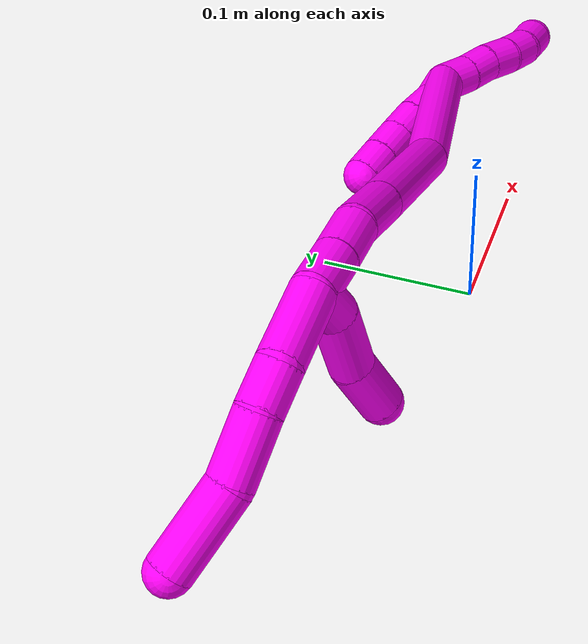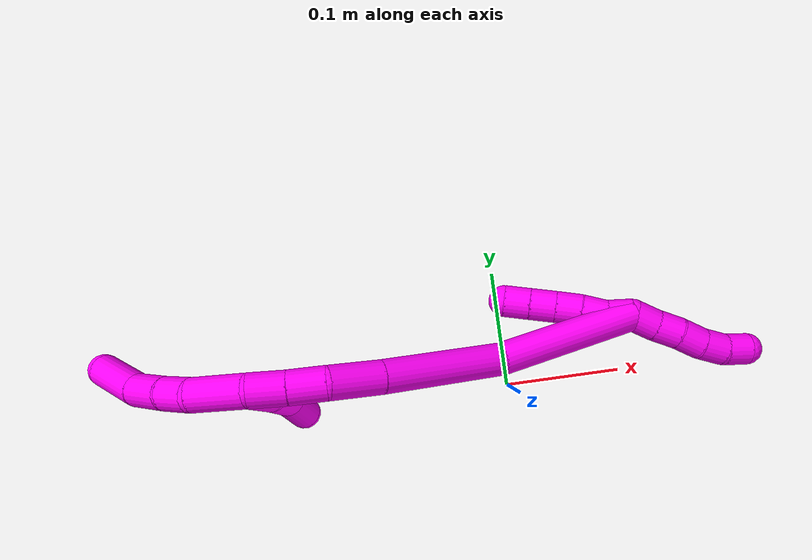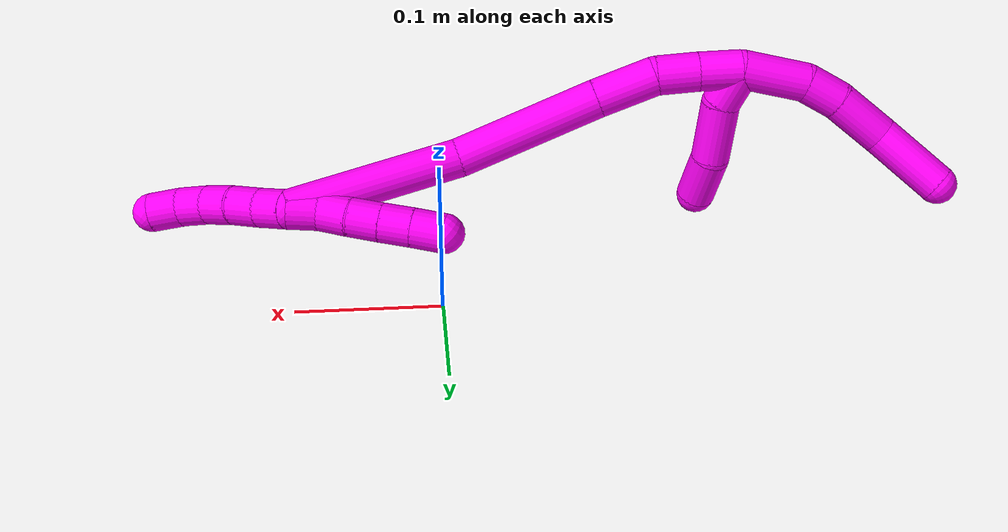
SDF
<sdf version="1.7">
 <world name="default">
  <model name="photoneo_s_sensor">
   <static>1</static>
   <pose>0 0 2 1.57079 1.57079 3.14159</pose>
   <link name="link">
    <inertial><mass>0.1</mass></inertial>
    <sensor name="sensor" type="depth">
     <update_rate>30</update_rate>
     <camera>
      <horizontal_fov>1.22</horizontal_fov>
      <image><width>1920</width><height>1200</height><format>B8G8R8</format></image>
      <clip><near>0.1</near><far>4</far></clip>
      <depth_camera><output>points</output></depth_camera>
     </camera>
     <plugin name="camera_plugin" filename="libgazebo_ros_depth_camera.so">
      <baseline>0.2</baseline>
      <alwaysOn>1</alwaysOn>
      <updateRate>0.0</updateRate>
      <cameraName>camera_ir</cameraName>
      <imageTopicName>/camera/color/image_raw</imageTopicName>
      <cameraInfoTopicName>/camera/color/camera_info</cameraInfoTopicName>
      <depthImageTopicName>/camera/depth/image_raw</depthImageTopicName>
      <depthImageCameraInfoTopicName>/camera/depth/camera_info</depthImageCameraInfoTopicName>
      <pointCloudTopicName>/camera/depth/points</pointCloudTopicName>
      <frameName>fr_optical</frameName>
      <pointCloudCutoff>0.1</pointCloudCutoff>
      <pointCloudCutoffMax>2.0</pointCloudCutoffMax>
      <distortionK1>0</distortionK1>
      <distortionK2>0</distortionK2>
      <distortionK3>0</distortionK3>
      <distortionT1>0</distortionT1>
      <distortionT2>0</distortionT2>
      <CxPrime>0</CxPrime>
      <Cx>0</Cx>
      <Cy>0</Cy>
      <focalLength>0</focalLength>
      <hackBaseline>0</hackBaseline>
     </plugin>
    </sensor>
   </link>
  </model>
  <model name="bin">
   <static>1</static>
   <link name="bottom">
    <collision name="collision-bottom">
     <pose>0 0 -0.01 0 -0 0</pose>
     <geometry><box><size>0.8 0.6 0.02</size></box></geometry>
     <surface>
      <friction><ode><mu>100</mu><mu2>100</mu2></ode></friction>
      <contact><collide_bitmask>65535</collide_bitmask></contact>
     </surface>
    </collision>
   </link>
   <link name="west_wall">
    <collision name="collision-west_wall">
     <pose>-0.41 0 0.1 0 -0 0</pose>
     <geometry><box><size>0.02 0.6 0.2</size></box></geometry>
     <surface>
      <friction><ode><mu>100</mu><mu2>100</mu2></ode></friction>
      <contact><collide_bitmask>65535</collide_bitmask></contact>
     </surface>
    </collision>
   </link>
   <link name="east_wall">
    <collision name="collision-east_wall">
     <pose>0.41 0 0.1 0 -0 0</pose>
     <geometry><box><size>0.02 0.6 0.2</size></box></geometry>
     <surface>
      <friction><ode><mu>100</mu><mu2>100</mu2></ode></friction>
      <contact><collide_bitmask>65535</collide_bitmask></contact>
     </surface>
    </collision>
   </link>
   <link name="south_wall">
    <collision name="collision-south_wall">
     <pose>0 -0.31 0.1 0 -0 0</pose>
     <geometry><box><size>0.8 0.02 0.2</size></box></geometry>
     <surface>
      <friction><ode><mu>100</mu><mu2>100</mu2></ode></friction>
      <contact><collide_bitmask>65535</collide_bitmask></contact>
     </surface>
    </collision>
   </link>
   <link name="north_wall">
    <collision name="collision-north_wall">
     <pose>0 0.31 0.1 0 -0 0</pose>
     <geometry><box><size>0.8 0.02 0.2</size></box></geometry>
     <surface>
      <friction><ode><mu>100</mu><mu2>100</mu2></ode></friction>
      <contact><collide_bitmask>65535</collide_bitmask></contact>
     </surface>
    </collision>
   </link>
  </model>
  <model name="10">
   <static>0</static>
   <link name="10">
    <collision name="collision-cylinder-e_1_2_8">
     <pose>-0.018199 -0.00307 0.010395 0.287185 -1.03366 -0.163987</pose>
     <geometry><cylinder><radius>0.0125</radius><length>0.042365</length></cylinder></geometry>
     <surface>
      <friction><ode><mu>1.16</mu><mu2>1.16</mu2><slip1>0</slip1><slip2>0</slip2></ode></friction>
      <contact><ode><kp>1e+06</kp><kd>1</kd><max_vel>0</max_vel><min_depth>0.001</min_depth></ode></contact>
     </surface>
    </collision>
    <visual name="visual-cylinder-e_1_2_8">
     <pose>-0.018199 -0.00307 0.010395 0.287185 -1.03366 -0.163987</pose>
     <geometry><cylinder><radius>0.0125</radius><length>0.042365</length></cylinder></geometry>
     <material><ambient>1 0 0.964706 1</ambient></material>
    </visual>
    <collision name="collision-cylinder-e_2_8_9">
     <pose>-0.047848 -0.008682 0.023397 0.772699 -1.26286 -0.578309</pose>
     <geometry><cylinder><radius>0.0125</radius><length>0.024027</length></cylinder></geometry>
     <surface>
      <friction><ode><mu>1.16</mu><mu2>1.16</mu2><slip1>0</slip1><slip2>0</slip2></ode></friction>
      <contact><ode><kp>1e+06</kp><kd>1</kd><max_vel>0</max_vel><min_depth>0.001</min_depth></ode></contact>
     </surface>
    </collision>
    <visual name="visual-cylinder-e_2_8_9">
     <pose>-0.047848 -0.008682 0.023397 0.772699 -1.26286 -0.578309</pose>
     <geometry><cylinder><radius>0.0125</radius><length>0.024027</length></cylinder></geometry>
     <material><ambient>1 0 0.964706 1</ambient></material>
    </visual>
    <collision name="collision-cylinder-e_3_9_10">
     <pose>-0.076445 -0.01617 0.027075 1.35761 -1.28383 -1.08527</pose>
     <geometry><cylinder><radius>0.0125</radius><length>0.035759</length></cylinder></geometry>
     <surface>
      <friction><ode><mu>1.16</mu><mu2>1.16</mu2><slip1>0</slip1><slip2>0</slip2></ode></friction>
      <contact><ode><kp>1e+06</kp><kd>1</kd><max_vel>0</max_vel><min_depth>0.001</min_depth></ode></contact>
     </surface>
    </collision>
    <visual name="visual-cylinder-e_3_9_10">
     <pose>-0.076445 -0.01617 0.027075 1.35761 -1.28383 -1.08527</pose>
     <geometry><cylinder><radius>0.0125</radius><length>0.035759</length></cylinder></geometry>
     <material><ambient>1 0 0.964706 1</ambient></material>
    </visual>
    <collision name="collision-cylinder-e_4_10_6">
     <pose>-0.117465 -0.022256 0.027056 2.33348 -1.50484 -2.28467</pose>
     <geometry><cylinder><radius>0.0125</radius><length>0.047849</length></cylinder></geometry>
     <surface>
      <friction><ode><mu>1.16</mu><mu2>1.16</mu2><slip1>0</slip1><slip2>0</slip2></ode></friction>
      <contact><ode><kp>1e+06</kp><kd>1</kd><max_vel>0</max_vel><min_depth>0.001</min_depth></ode></contact>
     </surface>
    </collision>
    <visual name="visual-cylinder-e_4_10_6">
     <pose>-0.117465 -0.022256 0.027056 2.33348 -1.50484 -2.28467</pose>
     <geometry><cylinder><radius>0.0125</radius><length>0.047849</length></cylinder></geometry>
     <material><ambient>1 0 0.964706 1</ambient></material>
    </visual>
    <collision name="collision-cylinder-e_1_2_11">
     <pose>-0.000985 -0.008321 -0.010007 2.44792 -0.075545 -0.20835</pose>
     <geometry><cylinder><radius>0.0125</radius><length>0.026103</length></cylinder></geometry>
     <surface>
      <friction><ode><mu>1.16</mu><mu2>1.16</mu2><slip1>0</slip1><slip2>0</slip2></ode></friction>
      <contact><ode><kp>1e+06</kp><kd>1</kd><max_vel>0</max_vel><min_depth>0.001</min_depth></ode></contact>
     </surface>
    </collision>
    <visual name="visual-cylinder-e_1_2_11">
     <pose>-0.000985 -0.008321 -0.010007 2.44792 -0.075545 -0.20835</pose>
     <geometry><cylinder><radius>0.0125</radius><length>0.026103</length></cylinder></geometry>
     <material><ambient>1 0 0.964706 1</ambient></material>
    </visual>
    <collision name="collision-cylinder-e_2_11_12">
     <pose>-0.009643 -0.030196 -0.03269 2.32274 -0.392046 -0.858303</pose>
     <geometry><cylinder><radius>0.0125</radius><length>0.040164</length></cylinder></geometry>
     <surface>
      <friction><ode><mu>1.16</mu><mu2>1.16</mu2><slip1>0</slip1><slip2>0</slip2></ode></friction>
      <contact><ode><kp>1e+06</kp><kd>1</kd><max_vel>0</max_vel><min_depth>0.001</min_depth></ode></contact>
     </surface>
    </collision>
    <visual name="visual-cylinder-e_2_11_12">
     <pose>-0.009643 -0.030196 -0.03269 2.32274 -0.392046 -0.858303</pose>
     <geometry><cylinder><radius>0.0125</radius><length>0.040164</length></cylinder></geometry>
     <material><ambient>1 0 0.964706 1</ambient></material>
    </visual>
    <collision name="collision-cylinder-e_3_12_5">
     <pose>-0.020421 -0.057506 -0.054619 2.16296 -0.185157 -0.345233</pose>
     <geometry><cylinder><radius>0.0125</radius><length>0.033734</length></cylinder></geometry>
     <surface>
      <friction><ode><mu>1.16</mu><mu2>1.16</mu2><slip1>0</slip1><slip2>0</slip2></ode></friction>
      <contact><ode><kp>1e+06</kp><kd>1</kd><max_vel>0</max_vel><min_depth>0.001</min_depth></ode></contact>
     </surface>
    </collision>
    <visual name="visual-cylinder-e_3_12_5">
     <pose>-0.020421 -0.057506 -0.054619 2.16296 -0.185157 -0.345233</pose>
     <geometry><cylinder><radius>0.0125</radius><length>0.033734</length></cylinder></geometry>
     <material><ambient>1 0 0.964706 1</ambient></material>
    </visual>
    <collision name="collision-cylinder-e_1_2_13">
     <pose>0.010036 -0.00019 -0.009107 3.12071 0.833769 3.09444</pose>
     <geometry><cylinder><radius>0.0125</radius><length>0.027106</length></cylinder></geometry>
     <surface>
      <friction><ode><mu>1.16</mu><mu2>1.16</mu2><slip1>0</slip1><slip2>0</slip2></ode></friction>
      <contact><ode><kp>1e+06</kp><kd>1</kd><max_vel>0</max_vel><min_depth>0.001</min_depth></ode></contact>
     </surface>
    </collision>
    <visual name="visual-cylinder-e_1_2_13">
     <pose>0.010036 -0.00019 -0.009107 3.12071 0.833769 3.09444</pose>
     <geometry><cylinder><radius>0.0125</radius><length>0.027106</length></cylinder></geometry>
     <material><ambient>1 0 0.964706 1</ambient></material>
    </visual>
    <collision name="collision-cylinder-e_2_13_14">
     <pose>0.029658 -0.000294 -0.027726 -3.13255 0.789273 -3.11988</pose>
     <geometry><cylinder><radius>0.0125</radius><length>0.027011</length></cylinder></geometry>
     <surface>
      <friction><ode><mu>1.16</mu><mu2>1.16</mu2><slip1>0</slip1><slip2>0</slip2></ode></friction>
      <contact><ode><kp>1e+06</kp><kd>1</kd><max_vel>0</max_vel><min_depth>0.001</min_depth></ode></contact>
     </surface>
    </collision>
    <visual name="visual-cylinder-e_2_13_14">
     <pose>0.029658 -0.000294 -0.027726 -3.13255 0.789273 -3.11988</pose>
     <geometry><cylinder><radius>0.0125</radius><length>0.027011</length></cylinder></geometry>
     <material><ambient>1 0 0.964706 1</ambient></material>
    </visual>
    <collision name="collision-cylinder-e_3_14_15">
     <pose>0.04933 -0.003448 -0.053704 2.94733 0.541135 2.46593</pose>
     <geometry><cylinder><radius>0.0125</radius><length>0.039158</length></cylinder></geometry>
     <surface>
      <friction><ode><mu>1.16</mu><mu2>1.16</mu2><slip1>0</slip1><slip2>0</slip2></ode></friction>
      <contact><ode><kp>1e+06</kp><kd>1</kd><max_vel>0</max_vel><min_depth>0.001</min_depth></ode></contact>
     </surface>
    </collision>
    <visual name="visual-cylinder-e_3_14_15">
     <pose>0.04933 -0.003448 -0.053704 2.94733 0.541135 2.46593</pose>
     <geometry><cylinder><radius>0.0125</radius><length>0.039158</length></cylinder></geometry>
     <material><ambient>1 0 0.964706 1</ambient></material>
    </visual>
    <collision name="collision-cylinder-e_4_15_16">
     <pose>0.082283 -0.013839 -0.111259 2.96927 0.501537 2.49116</pose>
     <geometry><cylinder><radius>0.0125</radius><length>0.09513</length></cylinder></geometry>
     <surface>
      <friction><ode><mu>1.16</mu><mu2>1.16</mu2><slip1>0</slip1><slip2>0</slip2></ode></friction>
      <contact><ode><kp>1e+06</kp><kd>1</kd><max_vel>0</max_vel><min_depth>0.001</min_depth></ode></contact>
     </surface>
    </collision>
    <visual name="visual-cylinder-e_4_15_16">
     <pose>0.082283 -0.013839 -0.111259 2.96927 0.501537 2.49116</pose>
     <geometry><cylinder><radius>0.0125</radius><length>0.09513</length></cylinder></geometry>
     <material><ambient>1 0 0.964706 1</ambient></material>
    </visual>
    <collision name="collision-cylinder-e_5_16_1">
     <pose>0.134887 -0.015586 -0.199252 -3.02687 0.562049 -2.74885</pose>
     <geometry><cylinder><radius>0.0125</radius><length>0.111596</length></cylinder></geometry>
     <surface>
      <friction><ode><mu>1.16</mu><mu2>1.16</mu2><slip1>0</slip1><slip2>0</slip2></ode></friction>
      <contact><ode><kp>1e+06</kp><kd>1</kd><max_vel>0</max_vel><min_depth>0.001</min_depth></ode></contact>
     </surface>
    </collision>
    <visual name="visual-cylinder-e_5_16_1">
     <pose>0.134887 -0.015586 -0.199252 -3.02687 0.562049 -2.74885</pose>
     <geometry><cylinder><radius>0.0125</radius><length>0.111596</length></cylinder></geometry>
     <material><ambient>1 0 0.964706 1</ambient></material>
    </visual>
    <collision name="collision-cylinder-e_1_1_17">
     <pose>0.172396 -0.014577 -0.250657 2.36799 0.890325 1.72828</pose>
     <geometry><cylinder><radius>0.0125</radius><length>0.02</length></cylinder></geometry>
     <surface>
      <friction><ode><mu>1.16</mu><mu2>1.16</mu2><slip1>0</slip1><slip2>0</slip2></ode></friction>
      <contact><ode><kp>1e+06</kp><kd>1</kd><max_vel>0</max_vel><min_depth>0.001</min_depth></ode></contact>
     </surface>
    </collision>
    <visual name="visual-cylinder-e_1_1_17">
     <pose>0.172396 -0.014577 -0.250657 2.36799 0.890325 1.72828</pose>
     <geometry><cylinder><radius>0.0125</radius><length>0.02</length></cylinder></geometry>
     <material><ambient>1 0 0.964706 1</ambient></material>
    </visual>
    <collision name="collision-cylinder-e_2_17_18">
     <pose>0.188331 -0.022411 -0.259801 2.50428 0.954954 2.00637</pose>
     <geometry><cylinder><radius>0.0125</radius><length>0.02</length></cylinder></geometry>
     <surface>
      <friction><ode><mu>1.16</mu><mu2>1.16</mu2><slip1>0</slip1><slip2>0</slip2></ode></friction>
      <contact><ode><kp>1e+06</kp><kd>1</kd><max_vel>0</max_vel><min_depth>0.001</min_depth></ode></contact>
     </surface>
    </collision>
    <visual name="visual-cylinder-e_2_17_18">
     <pose>0.188331 -0.022411 -0.259801 2.50428 0.954954 2.00637</pose>
     <geometry><cylinder><radius>0.0125</radius><length>0.02</length></cylinder></geometry>
     <material><ambient>1 0 0.964706 1</ambient></material>
    </visual>
    <collision name="collision-cylinder-e_3_18_19">
     <pose>0.204041 -0.030434 -0.269135 2.36748 0.855168 1.68207</pose>
     <geometry><cylinder><radius>0.0125</radius><length>0.02</length></cylinder></geometry>
     <surface>
      <friction><ode><mu>1.16</mu><mu2>1.16</mu2><slip1>0</slip1><slip2>0</slip2></ode></friction>
      <contact><ode><kp>1e+06</kp><kd>1</kd><max_vel>0</max_vel><min_depth>0.001</min_depth></ode></contact>
     </surface>
    </collision>
    <visual name="visual-cylinder-e_3_18_19">
     <pose>0.204041 -0.030434 -0.269135 2.36748 0.855168 1.68207</pose>
     <geometry><cylinder><radius>0.0125</radius><length>0.02</length></cylinder></geometry>
     <material><ambient>1 0 0.964706 1</ambient></material>
    </visual>
    <collision name="collision-cylinder-e_4_19_20">
     <pose>0.218889 -0.038466 -0.279727 2.61325 0.818486 2.02635</pose>
     <geometry><cylinder><radius>0.0125</radius><length>0.02</length></cylinder></geometry>
     <surface>
      <friction><ode><mu>1.16</mu><mu2>1.16</mu2><slip1>0</slip1><slip2>0</slip2></ode></friction>
      <contact><ode><kp>1e+06</kp><kd>1</kd><max_vel>0</max_vel><min_depth>0.001</min_depth></ode></contact>
     </surface>
    </collision>
    <visual name="visual-cylinder-e_4_19_20">
     <pose>0.218889 -0.038466 -0.279727 2.61325 0.818486 2.02635</pose>
     <geometry><cylinder><radius>0.0125</radius><length>0.02</length></cylinder></geometry>
     <material><ambient>1 0 0.964706 1</ambient></material>
    </visual>
    <collision name="collision-cylinder-e_5_20_4">
     <pose>0.232854 -0.043253 -0.292963 2.96056 0.729395 2.67478</pose>
     <geometry><cylinder><radius>0.0125</radius><length>0.02</length></cylinder></geometry>
     <surface>
      <friction><ode><mu>1.16</mu><mu2>1.16</mu2><slip1>0</slip1><slip2>0</slip2></ode></friction>
      <contact><ode><kp>1e+06</kp><kd>1</kd><max_vel>0</max_vel><min_depth>0.001</min_depth></ode></contact>
     </surface>
    </collision>
    <visual name="visual-cylinder-e_5_20_4">
     <pose>0.232854 -0.043253 -0.292963 2.96056 0.729395 2.67478</pose>
     <geometry><cylinder><radius>0.0125</radius><length>0.02</length></cylinder></geometry>
     <material><ambient>1 0 0.964706 1</ambient></material>
    </visual>
    <collision name="collision-cylinder-e_1_1_21">
     <pose>0.156602 -0.010375 -0.240187 0.032466 -0.930735 -0.016304</pose>
     <geometry><cylinder><radius>0.0125</radius><length>0.02</length></cylinder></geometry>
     <surface>
      <friction><ode><mu>1.16</mu><mu2>1.16</mu2><slip1>0</slip1><slip2>0</slip2></ode></friction>
      <contact><ode><kp>1e+06</kp><kd>1</kd><max_vel>0</max_vel><min_depth>0.001</min_depth></ode></contact>
     </surface>
    </collision>
    <visual name="visual-cylinder-e_1_1_21">
     <pose>0.156602 -0.010375 -0.240187 0.032466 -0.930735 -0.016304</pose>
     <geometry><cylinder><radius>0.0125</radius><length>0.02</length></cylinder></geometry>
     <material><ambient>1 0 0.964706 1</ambient></material>
    </visual>
    <collision name="collision-cylinder-e_2_21_22">
     <pose>0.139713 -0.008693 -0.229996 -0.418254 -1.09056 0.256082</pose>
     <geometry><cylinder><radius>0.0125</radius><length>0.02</length></cylinder></geometry>
     <surface>
      <friction><ode><mu>1.16</mu><mu2>1.16</mu2><slip1>0</slip1><slip2>0</slip2></ode></friction>
      <contact><ode><kp>1e+06</kp><kd>1</kd><max_vel>0</max_vel><min_depth>0.001</min_depth></ode></contact>
     </surface>
    </collision>
    <visual name="visual-cylinder-e_2_21_22">
     <pose>0.139713 -0.008693 -0.229996 -0.418254 -1.09056 0.256082</pose>
     <geometry><cylinder><radius>0.0125</radius><length>0.02</length></cylinder></geometry>
     <material><ambient>1 0 0.964706 1</ambient></material>
    </visual>
    <collision name="collision-cylinder-e_3_22_23">
     <pose>0.122029 -0.005857 -0.221151 -0.20458 -1.07899 0.122766</pose>
     <geometry><cylinder><radius>0.0125</radius><length>0.02</length></cylinder></geometry>
     <surface>
      <friction><ode><mu>1.16</mu><mu2>1.16</mu2><slip1>0</slip1><slip2>0</slip2></ode></friction>
      <contact><ode><kp>1e+06</kp><kd>1</kd><max_vel>0</max_vel><min_depth>0.001</min_depth></ode></contact>
     </surface>
    </collision>
    <visual name="visual-cylinder-e_3_22_23">
     <pose>0.122029 -0.005857 -0.221151 -0.20458 -1.07899 0.122766</pose>
     <geometry><cylinder><radius>0.0125</radius><length>0.02</length></cylinder></geometry>
     <material><ambient>1 0 0.964706 1</ambient></material>
    </visual>
    <collision name="collision-cylinder-e_4_23_24">
     <pose>0.104483 -0.004021 -0.211732 -0.180788 -1.0616 0.10631</pose>
     <geometry><cylinder><radius>0.0125</radius><length>0.02</length></cylinder></geometry>
     <surface>
      <friction><ode><mu>1.16</mu><mu2>1.16</mu2><slip1>0</slip1><slip2>0</slip2></ode></friction>
      <contact><ode><kp>1e+06</kp><kd>1</kd><max_vel>0</max_vel><min_depth>0.001</min_depth></ode></contact>
     </surface>
    </collision>
    <visual name="visual-cylinder-e_4_23_24">
     <pose>0.104483 -0.004021 -0.211732 -0.180788 -1.0616 0.10631</pose>
     <geometry><cylinder><radius>0.0125</radius><length>0.02</length></cylinder></geometry>
     <material><ambient>1 0 0.964706 1</ambient></material>
    </visual>
    <collision name="collision-cylinder-e_5_24_3">
     <pose>0.086913 -0.002352 -0.202327 -0.170344 -1.08409 0.102741</pose>
     <geometry><cylinder><radius>0.0125</radius><length>0.02</length></cylinder></geometry>
     <surface>
      <friction><ode><mu>1.16</mu><mu2>1.16</mu2><slip1>0</slip1><slip2>0</slip2></ode></friction>
      <contact><ode><kp>1e+06</kp><kd>1</kd><max_vel>0</max_vel><min_depth>0.001</min_depth></ode></contact>
     </surface>
    </collision>
    <visual name="visual-cylinder-e_5_24_3">
     <pose>0.086913 -0.002352 -0.202327 -0.170344 -1.08409 0.102741</pose>
     <geometry><cylinder><radius>0.0125</radius><length>0.02</length></cylinder></geometry>
     <material><ambient>1 0 0.964706 1</ambient></material>
    </visual>
    <collision name="collision-sphere-3">
     <pose>0.078074 -0.001559 -0.197717 0 -0 0</pose>
     <geometry><sphere><radius>0.0125</radius></sphere></geometry>
     <surface>
      <friction><ode><mu>1.16</mu><mu2>1.16</mu2><slip1>0</slip1><slip2>0</slip2></ode></friction>
      <contact><ode><kp>1e+06</kp><kd>1</kd><max_vel>0</max_vel><min_depth>0.001</min_depth></ode></contact>
     </surface>
    </collision>
    <visual name="visual-sphere-3">
     <pose>0.078074 -0.001559 -0.197717 0 -0 0</pose>
     <geometry><sphere><radius>0.0125</radius></sphere></geometry>
     <material><ambient>1 0 0.964706 1</ambient></material>
    </visual>
    <collision name="collision-sphere-24">
     <pose>0.095752 -0.003144 -0.206936 0 -0 0</pose>
     <geometry><sphere><radius>0.0125</radius></sphere></geometry>
     <surface>
      <friction><ode><mu>1.16</mu><mu2>1.16</mu2><slip1>0</slip1><slip2>0</slip2></ode></friction>
      <contact><ode><kp>1e+06</kp><kd>1</kd><max_vel>0</max_vel><min_depth>0.001</min_depth></ode></contact>
     </surface>
    </collision>
    <visual name="visual-sphere-24">
     <pose>0.095752 -0.003144 -0.206936 0 -0 0</pose>
     <geometry><sphere><radius>0.0125</radius></sphere></geometry>
     <material><ambient>1 0 0.964706 1</ambient></material>
    </visual>
    <collision name="collision-sphere-23">
     <pose>0.113214 -0.004897 -0.216527 0 -0 0</pose>
     <geometry><sphere><radius>0.0125</radius></sphere></geometry>
     <surface>
      <friction><ode><mu>1.16</mu><mu2>1.16</mu2><slip1>0</slip1><slip2>0</slip2></ode></friction>
      <contact><ode><kp>1e+06</kp><kd>1</kd><max_vel>0</max_vel><min_depth>0.001</min_depth></ode></contact>
     </surface>
    </collision>
    <visual name="visual-sphere-23">
     <pose>0.113214 -0.004897 -0.216527 0 -0 0</pose>
     <geometry><sphere><radius>0.0125</radius></sphere></geometry>
     <material><ambient>1 0 0.964706 1</ambient></material>
    </visual>
    <collision name="collision-sphere-22">
     <pose>0.130844 -0.006816 -0.225774 0 -0 0</pose>
     <geometry><sphere><radius>0.0125</radius></sphere></geometry>
     <surface>
      <friction><ode><mu>1.16</mu><mu2>1.16</mu2><slip1>0</slip1><slip2>0</slip2></ode></friction>
      <contact><ode><kp>1e+06</kp><kd>1</kd><max_vel>0</max_vel><min_depth>0.001</min_depth></ode></contact>
     </surface>
    </collision>
    <visual name="visual-sphere-22">
     <pose>0.130844 -0.006816 -0.225774 0 -0 0</pose>
     <geometry><sphere><radius>0.0125</radius></sphere></geometry>
     <material><ambient>1 0 0.964706 1</ambient></material>
    </visual>
    <collision name="collision-sphere-21">
     <pose>0.148582 -0.010569 -0.234218 0 -0 0</pose>
     <geometry><sphere><radius>0.0125</radius></sphere></geometry>
     <surface>
      <friction><ode><mu>1.16</mu><mu2>1.16</mu2><slip1>0</slip1><slip2>0</slip2></ode></friction>
      <contact><ode><kp>1e+06</kp><kd>1</kd><max_vel>0</max_vel><min_depth>0.001</min_depth></ode></contact>
     </surface>
    </collision>
    <visual name="visual-sphere-21">
     <pose>0.148582 -0.010569 -0.234218 0 -0 0</pose>
     <geometry><sphere><radius>0.0125</radius></sphere></geometry>
     <material><ambient>1 0 0.964706 1</ambient></material>
    </visual>
    <collision name="collision-sphere-4">
     <pose>0.239518 -0.044595 -0.300297 0 -0 0</pose>
     <geometry><sphere><radius>0.0125</radius></sphere></geometry>
     <surface>
      <friction><ode><mu>1.16</mu><mu2>1.16</mu2><slip1>0</slip1><slip2>0</slip2></ode></friction>
      <contact><ode><kp>1e+06</kp><kd>1</kd><max_vel>0</max_vel><min_depth>0.001</min_depth></ode></contact>
     </surface>
    </collision>
    <visual name="visual-sphere-4">
     <pose>0.239518 -0.044595 -0.300297 0 -0 0</pose>
     <geometry><sphere><radius>0.0125</radius></sphere></geometry>
     <material><ambient>1 0 0.964706 1</ambient></material>
    </visual>
    <collision name="collision-sphere-20">
     <pose>0.22619 -0.04191 -0.285629 0 -0 0</pose>
     <geometry><sphere><radius>0.0125</radius></sphere></geometry>
     <surface>
      <friction><ode><mu>1.16</mu><mu2>1.16</mu2><slip1>0</slip1><slip2>0</slip2></ode></friction>
      <contact><ode><kp>1e+06</kp><kd>1</kd><max_vel>0</max_vel><min_depth>0.001</min_depth></ode></contact>
     </surface>
    </collision>
    <visual name="visual-sphere-20">
     <pose>0.22619 -0.04191 -0.285629 0 -0 0</pose>
     <geometry><sphere><radius>0.0125</radius></sphere></geometry>
     <material><ambient>1 0 0.964706 1</ambient></material>
    </visual>
    <collision name="collision-sphere-11">
     <pose>-0.00197 -0.016642 -0.020013 0 -0 0</pose>
     <geometry><sphere><radius>0.0125</radius></sphere></geometry>
     <surface>
      <friction><ode><mu>1.16</mu><mu2>1.16</mu2><slip1>0</slip1><slip2>0</slip2></ode></friction>
      <contact><ode><kp>1e+06</kp><kd>1</kd><max_vel>0</max_vel><min_depth>0.001</min_depth></ode></contact>
     </surface>
    </collision>
    <visual name="visual-sphere-11">
     <pose>-0.00197 -0.016642 -0.020013 0 -0 0</pose>
     <geometry><sphere><radius>0.0125</radius></sphere></geometry>
     <material><ambient>1 0 0.964706 1</ambient></material>
    </visual>
    <collision name="collision-sphere-6">
     <pose>-0.141338 -0.023396 0.025967 0 -0 0</pose>
     <geometry><sphere><radius>0.0125</radius></sphere></geometry>
     <surface>
      <friction><ode><mu>1.16</mu><mu2>1.16</mu2><slip1>0</slip1><slip2>0</slip2></ode></friction>
      <contact><ode><kp>1e+06</kp><kd>1</kd><max_vel>0</max_vel><min_depth>0.001</min_depth></ode></contact>
     </surface>
    </collision>
    <visual name="visual-sphere-6">
     <pose>-0.141338 -0.023396 0.025967 0 -0 0</pose>
     <geometry><sphere><radius>0.0125</radius></sphere></geometry>
     <material><ambient>1 0 0.964706 1</ambient></material>
    </visual>
    <collision name="collision-sphere-10">
     <pose>-0.093593 -0.021116 0.028145 0 -0 0</pose>
     <geometry><sphere><radius>0.0125</radius></sphere></geometry>
     <surface>
      <friction><ode><mu>1.16</mu><mu2>1.16</mu2><slip1>0</slip1><slip2>0</slip2></ode></friction>
      <contact><ode><kp>1e+06</kp><kd>1</kd><max_vel>0</max_vel><min_depth>0.001</min_depth></ode></contact>
     </surface>
    </collision>
    <visual name="visual-sphere-10">
     <pose>-0.093593 -0.021116 0.028145 0 -0 0</pose>
     <geometry><sphere><radius>0.0125</radius></sphere></geometry>
     <material><ambient>1 0 0.964706 1</ambient></material>
    </visual>
    <collision name="collision-sphere-9">
     <pose>-0.059296 -0.011224 0.026004 0 -0 0</pose>
     <geometry><sphere><radius>0.0125</radius></sphere></geometry>
     <surface>
      <friction><ode><mu>1.16</mu><mu2>1.16</mu2><slip1>0</slip1><slip2>0</slip2></ode></friction>
      <contact><ode><kp>1e+06</kp><kd>1</kd><max_vel>0</max_vel><min_depth>0.001</min_depth></ode></contact>
     </surface>
    </collision>
    <visual name="visual-sphere-9">
     <pose>-0.059296 -0.011224 0.026004 0 -0 0</pose>
     <geometry><sphere><radius>0.0125</radius></sphere></geometry>
     <material><ambient>1 0 0.964706 1</ambient></material>
    </visual>
    <collision name="collision-sphere-2">
     <geometry><sphere><radius>0.0125</radius></sphere></geometry>
     <surface>
      <friction><ode><mu>1.16</mu><mu2>1.16</mu2><slip1>0</slip1><slip2>0</slip2></ode></friction>
      <contact><ode><kp>1e+06</kp><kd>1</kd><max_vel>0</max_vel><min_depth>0.001</min_depth></ode></contact>
     </surface>
    </collision>
    <visual name="visual-sphere-2">
     <geometry><sphere><radius>0.0125</radius></sphere></geometry>
     <material><ambient>1 0 0.964706 1</ambient></material>
    </visual>
    <collision name="collision-sphere-19">
     <pose>0.211588 -0.035021 -0.273826 0 -0 0</pose>
     <geometry><sphere><radius>0.0125</radius></sphere></geometry>
     <surface>
      <friction><ode><mu>1.16</mu><mu2>1.16</mu2><slip1>0</slip1><slip2>0</slip2></ode></friction>
      <contact><ode><kp>1e+06</kp><kd>1</kd><max_vel>0</max_vel><min_depth>0.001</min_depth></ode></contact>
     </surface>
    </collision>
    <visual name="visual-sphere-19">
     <pose>0.211588 -0.035021 -0.273826 0 -0 0</pose>
     <geometry><sphere><radius>0.0125</radius></sphere></geometry>
     <material><ambient>1 0 0.964706 1</ambient></material>
    </visual>
    <collision name="collision-sphere-8">
     <pose>-0.036399 -0.00614 0.020789 0 -0 0</pose>
     <geometry><sphere><radius>0.0125</radius></sphere></geometry>
     <surface>
      <friction><ode><mu>1.16</mu><mu2>1.16</mu2><slip1>0</slip1><slip2>0</slip2></ode></friction>
      <contact><ode><kp>1e+06</kp><kd>1</kd><max_vel>0</max_vel><min_depth>0.001</min_depth></ode></contact>
     </surface>
    </collision>
    <visual name="visual-sphere-8">
     <pose>-0.036399 -0.00614 0.020789 0 -0 0</pose>
     <geometry><sphere><radius>0.0125</radius></sphere></geometry>
     <material><ambient>1 0 0.964706 1</ambient></material>
    </visual>
    <collision name="collision-sphere-12">
     <pose>-0.017316 -0.04375 -0.045366 0 -0 0</pose>
     <geometry><sphere><radius>0.0125</radius></sphere></geometry>
     <surface>
      <friction><ode><mu>1.16</mu><mu2>1.16</mu2><slip1>0</slip1><slip2>0</slip2></ode></friction>
      <contact><ode><kp>1e+06</kp><kd>1</kd><max_vel>0</max_vel><min_depth>0.001</min_depth></ode></contact>
     </surface>
    </collision>
    <visual name="visual-sphere-12">
     <pose>-0.017316 -0.04375 -0.045366 0 -0 0</pose>
     <geometry><sphere><radius>0.0125</radius></sphere></geometry>
     <material><ambient>1 0 0.964706 1</ambient></material>
    </visual>
    <collision name="collision-sphere-5">
     <pose>-0.023526 -0.071262 -0.063873 0 -0 0</pose>
     <geometry><sphere><radius>0.0125</radius></sphere></geometry>
     <surface>
      <friction><ode><mu>1.16</mu><mu2>1.16</mu2><slip1>0</slip1><slip2>0</slip2></ode></friction>
      <contact><ode><kp>1e+06</kp><kd>1</kd><max_vel>0</max_vel><min_depth>0.001</min_depth></ode></contact>
     </surface>
    </collision>
    <visual name="visual-sphere-5">
     <pose>-0.023526 -0.071262 -0.063873 0 -0 0</pose>
     <geometry><sphere><radius>0.0125</radius></sphere></geometry>
     <material><ambient>1 0 0.964706 1</ambient></material>
    </visual>
    <collision name="collision-sphere-13">
     <pose>0.020071 -0.00038 -0.018214 0 -0 0</pose>
     <geometry><sphere><radius>0.0125</radius></sphere></geometry>
     <surface>
      <friction><ode><mu>1.16</mu><mu2>1.16</mu2><slip1>0</slip1><slip2>0</slip2></ode></friction>
      <contact><ode><kp>1e+06</kp><kd>1</kd><max_vel>0</max_vel><min_depth>0.001</min_depth></ode></contact>
     </surface>
    </collision>
    <visual name="visual-sphere-13">
     <pose>0.020071 -0.00038 -0.018214 0 -0 0</pose>
     <geometry><sphere><radius>0.0125</radius></sphere></geometry>
     <material><ambient>1 0 0.964706 1</ambient></material>
    </visual>
    <collision name="collision-sphere-14">
     <pose>0.039245 -0.000208 -0.037238 0 -0 0</pose>
     <geometry><sphere><radius>0.0125</radius></sphere></geometry>
     <surface>
      <friction><ode><mu>1.16</mu><mu2>1.16</mu2><slip1>0</slip1><slip2>0</slip2></ode></friction>
      <contact><ode><kp>1e+06</kp><kd>1</kd><max_vel>0</max_vel><min_depth>0.001</min_depth></ode></contact>
     </surface>
    </collision>
    <visual name="visual-sphere-14">
     <pose>0.039245 -0.000208 -0.037238 0 -0 0</pose>
     <geometry><sphere><radius>0.0125</radius></sphere></geometry>
     <material><ambient>1 0 0.964706 1</ambient></material>
    </visual>
    <collision name="collision-sphere-15">
     <pose>0.059415 -0.006688 -0.07017 0 -0 0</pose>
     <geometry><sphere><radius>0.0125</radius></sphere></geometry>
     <surface>
      <friction><ode><mu>1.16</mu><mu2>1.16</mu2><slip1>0</slip1><slip2>0</slip2></ode></friction>
      <contact><ode><kp>1e+06</kp><kd>1</kd><max_vel>0</max_vel><min_depth>0.001</min_depth></ode></contact>
     </surface>
    </collision>
    <visual name="visual-sphere-15">
     <pose>0.059415 -0.006688 -0.07017 0 -0 0</pose>
     <geometry><sphere><radius>0.0125</radius></sphere></geometry>
     <material><ambient>1 0 0.964706 1</ambient></material>
    </visual>
    <collision name="collision-sphere-16">
     <pose>0.105151 -0.020991 -0.152349 0 -0 0</pose>
     <geometry><sphere><radius>0.0125</radius></sphere></geometry>
     <surface>
      <friction><ode><mu>1.16</mu><mu2>1.16</mu2><slip1>0</slip1><slip2>0</slip2></ode></friction>
      <contact><ode><kp>1e+06</kp><kd>1</kd><max_vel>0</max_vel><min_depth>0.001</min_depth></ode></contact>
     </surface>
    </collision>
    <visual name="visual-sphere-16">
     <pose>0.105151 -0.020991 -0.152349 0 -0 0</pose>
     <geometry><sphere><radius>0.0125</radius></sphere></geometry>
     <material><ambient>1 0 0.964706 1</ambient></material>
    </visual>
    <collision name="collision-sphere-1">
     <pose>0.164623 -0.010181 -0.246156 0 -0 0</pose>
     <geometry><sphere><radius>0.0125</radius></sphere></geometry>
     <surface>
      <friction><ode><mu>1.16</mu><mu2>1.16</mu2><slip1>0</slip1><slip2>0</slip2></ode></friction>
      <contact><ode><kp>1e+06</kp><kd>1</kd><max_vel>0</max_vel><min_depth>0.001</min_depth></ode></contact>
     </surface>
    </collision>
    <visual name="visual-sphere-1">
     <pose>0.164623 -0.010181 -0.246156 0 -0 0</pose>
     <geometry><sphere><radius>0.0125</radius></sphere></geometry>
     <material><ambient>1 0 0.964706 1</ambient></material>
    </visual>
    <collision name="collision-sphere-18">
     <pose>0.196494 -0.025848 -0.264443 0 -0 0</pose>
     <geometry><sphere><radius>0.0125</radius></sphere></geometry>
     <surface>
      <friction><ode><mu>1.16</mu><mu2>1.16</mu2><slip1>0</slip1><slip2>0</slip2></ode></friction>
      <contact><ode><kp>1e+06</kp><kd>1</kd><max_vel>0</max_vel><min_depth>0.001</min_depth></ode></contact>
     </surface>
    </collision>
    <visual name="visual-sphere-18">
     <pose>0.196494 -0.025848 -0.264443 0 -0 0</pose>
     <geometry><sphere><radius>0.0125</radius></sphere></geometry>
     <material><ambient>1 0 0.964706 1</ambient></material>
    </visual>
    <collision name="collision-sphere-17">
     <pose>0.180168 -0.018973 -0.255158 0 -0 0</pose>
     <geometry><sphere><radius>0.0125</radius></sphere></geometry>
     <surface>
      <friction><ode><mu>1.16</mu><mu2>1.16</mu2><slip1>0</slip1><slip2>0</slip2></ode></friction>
      <contact><ode><kp>1e+06</kp><kd>1</kd><max_vel>0</max_vel><min_depth>0.001</min_depth></ode></contact>
     </surface>
    </collision>
    <visual name="visual-sphere-17">
     <pose>0.180168 -0.018973 -0.255158 0 -0 0</pose>
     <geometry><sphere><radius>0.0125</radius></sphere></geometry>
     <material><ambient>1 0 0.964706 1</ambient></material>
    </visual>
    <inertial>
     <pose>0.062711 -0.016219 -0.113631 0 -0 0</pose>
     <mass>0.75</mass>
     <inertia>
      <ixx>-0.000139</ixx>
      <ixy>0</ixy>
      <ixz>0</ixz>
      <iyy>0.000209</iyy>
      <iyz>0</iyz>
      <izz>-8.5e-05</izz>
     </inertia>
    </inertial>
   </link>
   <pose>-0.190112 0.032525 0.170506 0.691576 -0.563906 -0.496945</pose>
  </model>
 </world>
</sdf>
